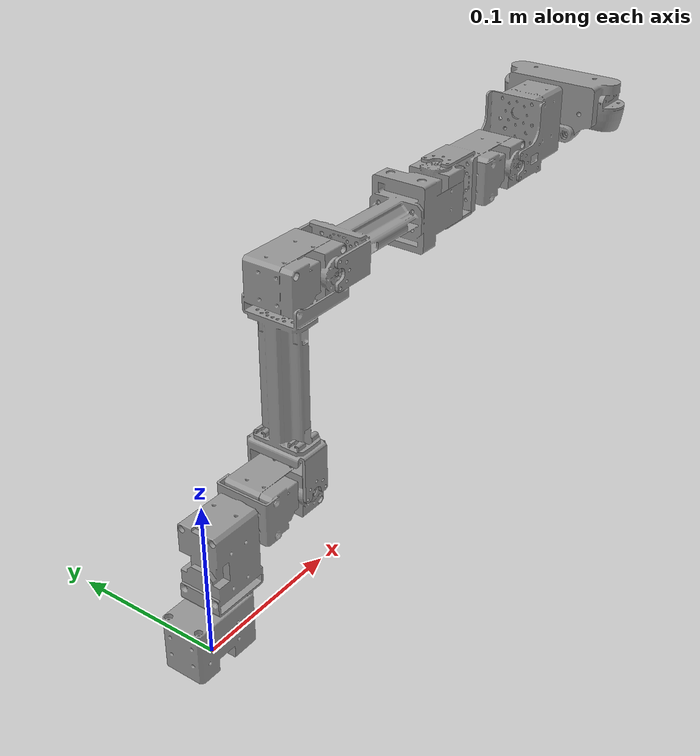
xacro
<?xml version="1.0"?>
<!-- Open_Manipulator Chain -->
<robot xmlns:xacro="http://ros.org/wiki/xacro">

  <!-- Link 1 -->
  <link name="link1">
    <visual>
      <origin xyz="0 0 0" rpy="0 0 0"/>
      <geometry>
        <mesh filename="package://open_manipulator_description/meshes/chain_link1.stl" scale="0.001 0.001 0.001"/>
      </geometry>
      <material name="grey"/>
    </visual>

    <collision>
      <origin xyz="0 0 0" rpy="0 0 0"/>
      <geometry>
        <mesh filename="package://open_manipulator_description/meshes/chain_link1.stl" scale="0.001 0.001 0.001"/>
      </geometry>
    </collision>

    <inertial>
      <origin xyz="3.0876154e-04 0.0000000e+00 -1.2176461e-04" />
      <mass value="7.9119962e-02" />
      <inertia ixx="1.2505234e-05" ixy="0.0" ixz="-1.7855208e-07"
               iyy="2.1898364e-05" iyz="0.0"
               izz="1.9267361e-05" />
    </inertial>
  </link>

  <!-- Joint 1 -->
  <joint name="joint1" type="revolute">
    <parent link="link1"/>
    <child link="link2"/>
    <origin xyz="0.012 0.0 0.017" rpy="0 0 0"/>
    <axis xyz="0 0 1"/>
    <limit velocity="4.8" effort="1" lower="${-pi*0.9}" upper="${pi*0.9}" />
  </joint>

  <!--  Link 2 -->
  <link name="link2">
    <visual>
      <origin xyz="0 0 0.019" rpy="0 0 0"/>
      <geometry>
        <mesh filename="package://open_manipulator_description/meshes/chain_link2.stl" scale="0.001 0.001 0.001"/>
      </geometry>
      <material name="grey"/>
    </visual>

    <collision>
      <origin xyz="0 0 0.019" rpy="0 0 0"/>
      <geometry>
        <mesh filename="package://open_manipulator_description/meshes/chain_link2.stl" scale="0.001 0.001 0.001"/>
      </geometry>
    </collision>

    <inertial>
      <origin xyz="-3.0184870e-04 5.4043684e-04 ${0.018 + 2.9433464e-02}" />
      <mass value="9.8406837e-02" />
      <inertia ixx="3.4543422e-05" ixy="-1.6031095e-08" ixz="-3.8375155e-07"
               iyy="3.2689329e-05" iyz="2.8511935e-08"
               izz="1.8850320e-05" />
    </inertial>
  </link>

  <!--  Joint 2 -->
  <joint name="joint2" type="revolute">
    <parent link="link2"/>
    <child link="link3"/>
    <origin xyz="0.019 0.0 0.0595" rpy="0 0 0"/>
    <axis xyz="1 0 0"/>
    <limit velocity="4.8" effort="1" lower="${-pi*0.6}" upper="${pi*0.6}" />
  </joint>

  <!--  Link 3 -->
  <link name="link3">
    <visual>
      <origin xyz="0 0 0" rpy="0 0 0"/>
      <geometry>
        <mesh filename="package://open_manipulator_description/meshes/chain_link3.stl" scale="0.001 0.001 0.001"/>
      </geometry>
      <material name="grey"/>
    </visual>

    <collision>
      <origin xyz="0 0 0" rpy="0 0 0"/>
      <geometry>
        <mesh filename="package://open_manipulator_description/meshes/chain_link3.stl" scale="0.001 0.001 0.001"/>
      </geometry>
    </collision>

    <inertial>
      <origin xyz="-3.0184870e-04 5.4043684e-04 ${0.018 + 2.9433464e-02}" />
      <mass value="9.8406837e-02" />
      <inertia ixx="3.4543422e-05" ixy="-1.6031095e-08" ixz="-3.8375155e-07"
               iyy="3.2689329e-05" iyz="2.8511935e-08"
               izz="1.8850320e-05" />
    </inertial>
  </link>

  <!--  Joint 3 -->
  <joint name="joint3" type="revolute">
    <parent link="link3"/>
    <child link="link4"/>
    <origin xyz="0.0405 0.0 0.0" rpy="0 0 0"/>
    <axis xyz="0 1 0"/>
    <limit velocity="4.8" effort="1" lower="${-pi*0.161}" upper="${pi*1.155}" />
  </joint>

  <!--  Link 4 -->
  <link name="link4">
    <visual>
      <origin xyz="0 0 0" rpy="0 0 0"/>
      <geometry>
        <mesh filename="package://open_manipulator_description/meshes/chain_link4.stl" scale="0.001 0.001 0.001"/>
      </geometry>
      <material name="grey"/>
    </visual>

    <collision>
      <origin xyz="0 0 0" rpy="0 0 0"/>
      <geometry>
        <mesh filename="package://open_manipulator_description/meshes/chain_link4.stl" scale="0.001 0.001 0.001"/>
      </geometry>
    </collision>

    <inertial>
      <origin xyz="1.0308393e-02 3.7743363e-04 1.0170197e-01" />
      <mass value="1.3850917e-01" />
      <inertia ixx="3.3055381e-04" ixy="-9.7940978e-08" ixz="-3.8505711e-05"
               iyy="3.4290447e-04" iyz="-1.5717516e-06"
               izz="6.0346498e-05" />
    </inertial>
  </link>

  <!--  Joint 4 -->
  <joint name="joint4" type="revolute">
    <parent link="link4"/>
    <child link="link5"/>
    <origin xyz="0.024 0 0.128" rpy="0 0 0"/>
    <axis xyz="0 1 0"/>
    <limit velocity="4.8" effort="1" lower="${-pi*0.65}" upper="${pi*0.44}" />
  </joint>

  <!--  Link 5 -->
  <link name="link5">
    <visual>
      <origin xyz="0 0 0" rpy="0 0 0"/>
      <geometry>
        <mesh filename="package://open_manipulator_description/meshes/chain_link5.stl" scale="0.001 0.001 0.001"/>
      </geometry>
      <material name="grey"/>
    </visual>

    <collision>
      <origin xyz="0 0 0" rpy="0 0 0"/>
      <geometry>
        <mesh filename="package://open_manipulator_description/meshes/chain_link5.stl" scale="0.001 0.001 0.001"/>
      </geometry>
    </collision>

    <inertial>
      <origin xyz="9.0909590e-02 3.8929816e-04 2.2413279e-04" />
      <mass value="1.3274562e-01" />
      <inertia ixx="3.0654178e-05" ixy="-1.2764155e-06" ixz="-2.6874417e-07"
               iyy="2.4230292e-04" iyz="1.1559550e-08"
               izz="2.5155057e-04" />
    </inertial>
  </link>

  <!--  Joint 5 -->
  <joint name="joint5" type="revolute">
    <parent link="link5"/>
    <child link="link6"/>
    <origin xyz="0.12375 0.0 0.0" rpy="0 0 0"/>
    <axis xyz="0 0 -1"/>
    <limit velocity="4.8" effort="1" lower="${-pi*0.63}" upper="${pi*0.63}" />
  </joint>

  <!--  Link 6 -->
  <link name="link6">
    <visual>
      <origin xyz="0 0 0" rpy="0 0 0"/>
      <geometry>
        <mesh filename="package://open_manipulator_description/meshes/chain_link6.stl" scale="0.001 0.001 0.001"/>
      </geometry>
      <material name="grey"/>
    </visual>

    <collision>
      <origin xyz="0 0 0" rpy="0 0 0"/>
      <geometry>
        <mesh filename="package://open_manipulator_description/meshes/chain_link6.stl" scale="0.001 0.001 0.001"/>
      </geometry>
    </collision>

    <inertial>
      <origin xyz="4.4206755e-02 3.6839985e-07 8.9142216e-03" />
      <mass value="1.4327573e-01" />
      <inertia ixx="8.0870749e-05" ixy="0.0" ixz="-1.0157896e-06"
               iyy="7.5980465e-05" iyz="0.0"
               izz="9.3127351e-05" />
    </inertial>
  </link>

 <!--  Joint 6 -->
  <joint name="joint6" type="revolute">
    <parent link="link6"/>
    <child link="link7"/>
    <origin xyz="0.069 0.0 0.0" rpy="0 0 0"/>
    <axis xyz="0 1 0"/>
    <limit velocity="4.8" effort="1" lower="${-pi*0.57}" upper="${pi*0.65}" />
  </joint>

  <!-- Link 7 -->
  <link name="link7">
    <visual>
      <origin xyz="0 0 0" rpy="0 0 0"/>
      <geometry>
        <mesh filename="package://open_manipulator_description/meshes/chain_link7.stl" scale="0.001 0.001 0.001"/>
      </geometry>
      <material name="grey"/>
    </visual>

    <collision>
      <origin xyz="0 0 0" rpy="0 0 0"/>
      <geometry>
        <mesh filename="package://open_manipulator_description/meshes/chain_link7.stl" scale="0.001 0.001 0.001"/>
      </geometry>
    </collision>

    <inertial>
      <origin xyz="4.4206755e-02 3.6839985e-07 8.9142216e-03" />
      <mass value="1.4327573e-01" />
      <inertia ixx="8.0870749e-05" ixy="0.0" ixz="-1.0157896e-06"
               iyy="7.5980465e-05" iyz="0.0"
               izz="9.3127351e-05" />
    </inertial>
  </link>

   <!--  Joint 7 -->
  <joint name="joint7" type="revolute">
    <parent link="link7"/>
    <child link="link8"/>
    <origin xyz="0.064 0.0 0.0" rpy="0 0 0"/>
    <axis xyz="1 0 0"/>
    <limit velocity="4.8" effort="1" lower="${-1*pi}" upper="${pi}" />
  </joint>

  <!-- Link 8 -->
  <link name="link8">
    <visual>
      <origin xyz="0 0 0" rpy="0 0 0"/>
      <geometry>
        <mesh filename="package://open_manipulator_description/meshes/chain_link8.stl" scale="0.001 0.001 0.001"/>
      </geometry>
      <material name="grey"/>
    </visual>

    <collision>
      <origin xyz="0 0 0" rpy="0 0 0"/>
      <geometry>
        <mesh filename="package://open_manipulator_description/meshes/chain_link8.stl" scale="0.001 0.001 0.001"/>
      </geometry>
    </collision>

    <inertial>
      <origin xyz="4.4206755e-02 3.6839985e-07 8.9142216e-03" />
      <mass value="1.4327573e-01" />
      <inertia ixx="8.0870749e-05" ixy="0.0" ixz="-1.0157896e-06"
               iyy="7.5980465e-05" iyz="0.0"
               izz="9.3127351e-05" />
    </inertial>
  </link>

  <!-- Realsense Camera TF Position, refer to documentation for true placement-->
  <joint name="camera_joint" type="fixed">
    <axis xyz="1 0 0" />
    <origin xyz="0.0275 0.0175 0.00245" rpy="0 ${pi*0.5} 0"/>
    <parent link="link8"/>
    <child link="fk_camera_link"/>
  </joint>

  <link name="fk_camera_link"/>

</robot>
